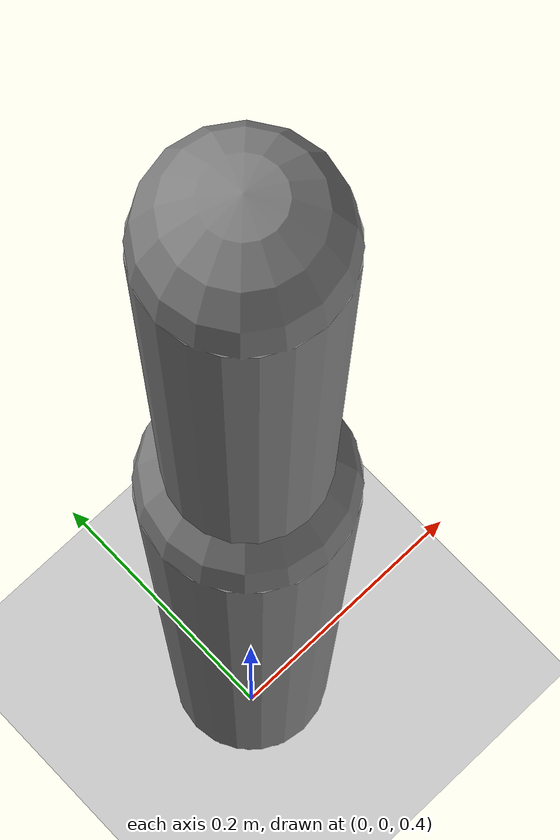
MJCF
<?xml version='1.0' encoding='UTF-8'?>
<mujoco model="RobotModel">
  <option gravity="0 0 -9.81" timestep="0.002" solver="CG" iterations="500" integrator="Euler"/>
  <worldbody>
    <geom name="Floor" type="plane" size="10 10 0.1" pos="0 0 0" rgba="0.8 0.8 0.8 1"/>
    <body name="Limb0" pos="0 0 0.5">
      <geom type="capsule" fromto="0 0 0 0 0 0.5" size="0.053177517228541894" density="1000" contype="0" conaffinity="0"/>
      <body name="Limb0_914b4867" pos="0 0 0.5">
        <geom type="capsule" fromto="0 0 0 0 0 0.27620994983345765" size="0.038770370033590004" density="800" contype="0" conaffinity="0"/>
        <joint name="Joint_Limb0_Limb0_914b4867_0" type="hinge" axis="1 0 0" range="-60 60"/>
      </body>
    </body>
  </worldbody>
  <actuator>
    <position name="position_Actuator_Joint_Limb0_Limb0_914b4867_0" joint="Joint_Limb0_Limb0_914b4867_0" gear="1.0"/>
  </actuator>
</mujoco>
